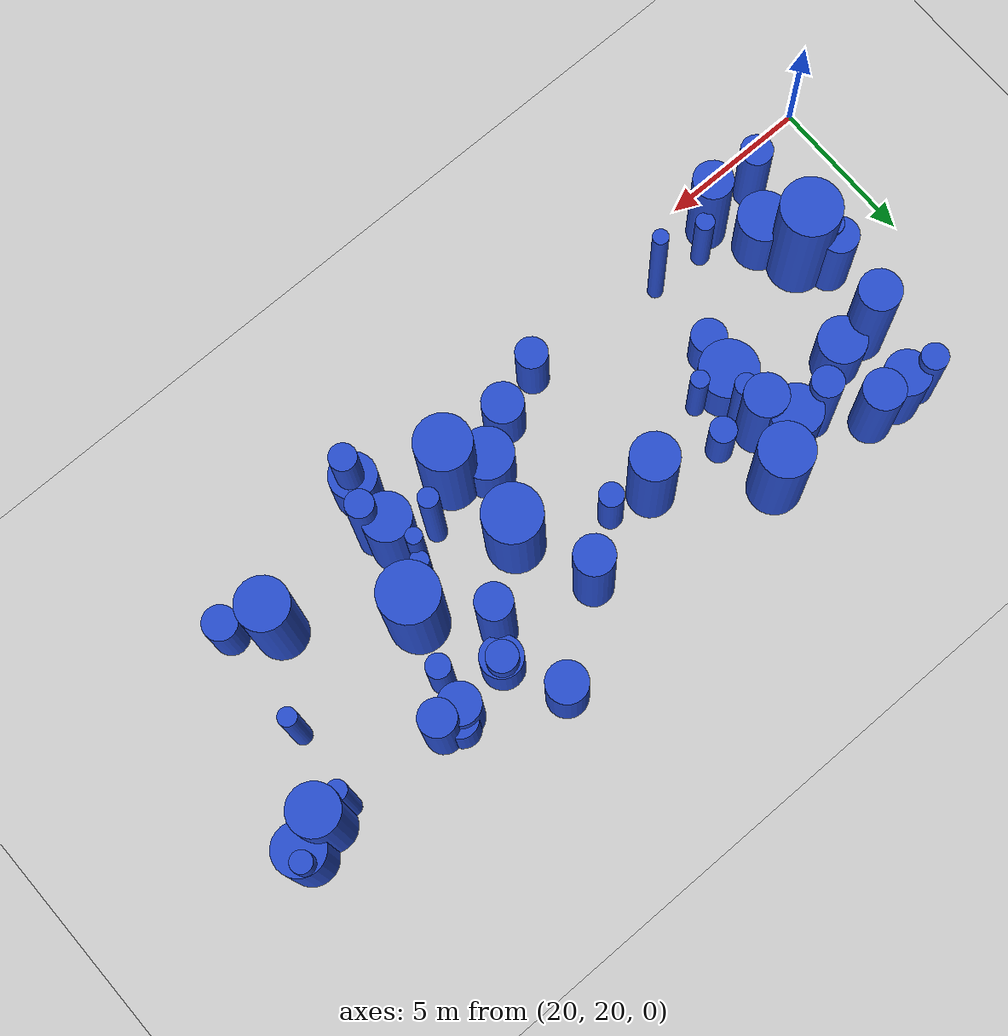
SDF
<sdf version="1.6">
 <world name="default">
  <model name="ground_plane">
   <static>1</static>
   <link name="link">
    <collision name="collision">
     <geometry><plane><normal>0 0 1</normal><size>100 100</size></plane></geometry>
     <surface><friction><ode><mu>100</mu><mu2>50</mu2></ode></friction></surface>
    </collision>
    <visual name="visual">
     <cast_shadows>0</cast_shadows>
     <geometry><plane><normal>0 0 1</normal><size>100 100</size></plane></geometry>
     <material>
      <script><uri>file://media/materials/scripts/gazebo.material</uri><name>Gazebo/Grey</name></script>
     </material>
    </visual>
   </link>
  </model>
  <model name="1">
   <static>0</static>
   <link name="link">
    <inertial>
     <mass>2</mass>
     <inertia><ixx>1.29937</ixx><ixy>0</ixy><ixz>0</ixz><iyy>1.29937</iyy><iyz>0</iyz><izz>0.270526</izz></inertia>
    </inertial>
    <collision name="collision">
     <geometry><cylinder><length>2.64284</length><radius>0.520121</radius></cylinder></geometry>
     <surface><contact><collide_without_contact>1</collide_without_contact></contact></surface>
    </collision>
    <visual name="visual">
     <geometry><cylinder><length>2.64284</length><radius>0.520121</radius></cylinder></geometry>
     <material>
      <script><uri>file://media/materials/scripts/gazebo.material</uri><name>Gazebo/Blue</name></script>
     </material>
    </visual>
    <gravity>0</gravity>
   </link>
   <pose>32.0876 21.3109 1.32142 0 -0 0</pose>
  </model>
  <model name="22">
   <static>0</static>
   <link name="link">
    <inertial>
     <mass>2</mass>
     <inertia><ixx>3.25357</ixx><ixy>0</ixy><ixz>0</ixz><iyy>3.25357</iyy><iyz>0</iyz><izz>0.409144</izz></inertia>
    </inertial>
    <collision name="collision">
     <geometry><cylinder><length>4.27715</length><radius>0.639643</radius></cylinder></geometry>
     <surface><contact><collide_without_contact>1</collide_without_contact></contact></surface>
    </collision>
    <visual name="visual">
     <geometry><cylinder><length>4.27715</length><radius>0.639643</radius></cylinder></geometry>
     <material>
      <script><uri>file://media/materials/scripts/gazebo.material</uri><name>Gazebo/Blue</name></script>
     </material>
    </visual>
    <gravity>0</gravity>
   </link>
   <pose>24.6833 21.1514 2.13857 0 -0 0</pose>
  </model>
  <model name="24">
   <static>0</static>
   <link name="link">
    <inertial>
     <mass>2</mass>
     <inertia><ixx>1.49406</ixx><ixy>0</ixy><ixz>0</ixz><iyy>1.49406</iyy><iyz>0</iyz><izz>0.447724</izz></inertia>
    </inertial>
    <collision name="collision">
     <geometry><cylinder><length>2.76065</length><radius>0.669122</radius></cylinder></geometry>
     <surface><contact><collide_without_contact>1</collide_without_contact></contact></surface>
    </collision>
    <visual name="visual">
     <geometry><cylinder><length>2.76065</length><radius>0.669122</radius></cylinder></geometry>
     <material>
      <script><uri>file://media/materials/scripts/gazebo.material</uri><name>Gazebo/Blue</name></script>
     </material>
    </visual>
    <gravity>0</gravity>
   </link>
   <pose>37.853 29.6773 1.38032 0 -0 0</pose>
  </model>
  <model name="27">
   <static>0</static>
   <link name="link">
    <inertial>
     <mass>2</mass>
     <inertia>
      <ixx>2.06442</ixx>
      <ixy>0</ixy>
      <ixz>0</ixz>
      <iyy>2.06442</iyy>
      <iyz>0</iyz>
      <izz>0.0914529</izz>
     </inertia>
    </inertial>
    <collision name="collision">
     <geometry><cylinder><length>3.48025</length><radius>0.302412</radius></cylinder></geometry>
     <surface><contact><collide_without_contact>1</collide_without_contact></contact></surface>
    </collision>
    <visual name="visual">
     <geometry><cylinder><length>3.48025</length><radius>0.302412</radius></cylinder></geometry>
     <material>
      <script><uri>file://media/materials/scripts/gazebo.material</uri><name>Gazebo/Blue</name></script>
     </material>
    </visual>
    <gravity>0</gravity>
   </link>
   <pose>38.8581 24.2263 1.74013 0 -0 0</pose>
  </model>
  <model name="29">
   <static>0</static>
   <link name="link">
    <inertial>
     <mass>2</mass>
     <inertia>
      <ixx>0.983996</ixx>
      <ixy>0</ixy>
      <ixz>0</ixz>
      <iyy>0.983996</iyy>
      <iyz>0</iyz>
      <izz>0.470048</izz>
     </inertia>
    </inertial>
    <collision name="collision">
     <geometry><cylinder><length>2.11987</length><radius>0.685601</radius></cylinder></geometry>
     <surface><contact><collide_without_contact>1</collide_without_contact></contact></surface>
    </collision>
    <visual name="visual">
     <geometry><cylinder><length>2.11987</length><radius>0.685601</radius></cylinder></geometry>
     <material>
      <script><uri>file://media/materials/scripts/gazebo.material</uri><name>Gazebo/Blue</name></script>
     </material>
    </visual>
    <gravity>0</gravity>
   </link>
   <pose>38.7542 27.7533 1.05993 0 -0 0</pose>
  </model>
  <model name="34">
   <static>0</static>
   <link name="link">
    <inertial>
     <mass>2</mass>
     <inertia><ixx>0.87381</ixx><ixy>0</ixy><ixz>0</ixz><iyy>0.87381</iyy><iyz>0</iyz><izz>0.104626</izz></inertia>
    </inertial>
    <collision name="collision">
     <geometry><cylinder><length>2.22013</length><radius>0.323459</radius></cylinder></geometry>
     <surface><contact><collide_without_contact>1</collide_without_contact></contact></surface>
    </collision>
    <visual name="visual">
     <geometry><cylinder><length>2.22013</length><radius>0.323459</radius></cylinder></geometry>
     <material>
      <script><uri>file://media/materials/scripts/gazebo.material</uri><name>Gazebo/Blue</name></script>
     </material>
    </visual>
    <gravity>0</gravity>
   </link>
   <pose>28.0725 29.1738 1.11007 0 -0 0</pose>
  </model>
  <model name="38">
   <static>0</static>
   <link name="link">
    <inertial>
     <mass>2</mass>
     <inertia><ixx>1.50603</ixx><ixy>0</ixy><ixz>0</ixz><iyy>1.50603</iyy><iyz>0</iyz><izz>0.44841</izz></inertia>
    </inertial>
    <collision name="collision">
     <geometry><cylinder><length>2.77325</length><radius>0.669635</radius></cylinder></geometry>
     <surface><contact><collide_without_contact>1</collide_without_contact></contact></surface>
    </collision>
    <visual name="visual">
     <geometry><cylinder><length>2.77325</length><radius>0.669635</radius></cylinder></geometry>
     <material>
      <script><uri>file://media/materials/scripts/gazebo.material</uri><name>Gazebo/Blue</name></script>
     </material>
    </visual>
    <gravity>0</gravity>
   </link>
   <pose>40.6277 28.1109 1.38663 0 -0 0</pose>
  </model>
  <model name="59">
   <static>0</static>
   <link name="link">
    <inertial>
     <mass>2</mass>
     <inertia><ixx>1.53536</ixx><ixy>0</ixy><ixz>0</ixz><iyy>1.53536</iyy><iyz>0</iyz><izz>0.253607</izz></inertia>
    </inertial>
    <collision name="collision">
     <geometry><cylinder><length>2.90712</length><radius>0.503594</radius></cylinder></geometry>
     <surface><contact><collide_without_contact>1</collide_without_contact></contact></surface>
    </collision>
    <visual name="visual">
     <geometry><cylinder><length>2.90712</length><radius>0.503594</radius></cylinder></geometry>
     <material>
      <script><uri>file://media/materials/scripts/gazebo.material</uri><name>Gazebo/Blue</name></script>
     </material>
    </visual>
    <gravity>0</gravity>
   </link>
   <pose>38.8057 27.8795 1.45356 0 -0 0</pose>
  </model>
  <model name="74">
   <static>0</static>
   <link name="link">
    <inertial>
     <mass>2</mass>
     <inertia><ixx>4.13948</ixx><ixy>0</ixy><ixz>0</ixz><iyy>4.13948</iyy><iyz>0</iyz><izz>0.198706</izz></inertia>
    </inertial>
    <collision name="collision">
     <geometry><cylinder><length>4.92349</length><radius>0.445764</radius></cylinder></geometry>
     <surface><contact><collide_without_contact>1</collide_without_contact></contact></surface>
    </collision>
    <visual name="visual">
     <geometry><cylinder><length>4.92349</length><radius>0.445764</radius></cylinder></geometry>
     <material>
      <script><uri>file://media/materials/scripts/gazebo.material</uri><name>Gazebo/Blue</name></script>
     </material>
    </visual>
    <gravity>0</gravity>
   </link>
   <pose>39.2279 22.1338 2.46174 0 -0 0</pose>
  </model>
  <model name="79">
   <static>0</static>
   <link name="link">
    <inertial>
     <mass>2</mass>
     <inertia><ixx>1.8778</ixx><ixy>0</ixy><ixz>0</ixz><iyy>1.8778</iyy><iyz>0</iyz><izz>0.557212</izz></inertia>
    </inertial>
    <collision name="collision">
     <geometry><cylinder><length>3.09761</length><radius>0.746467</radius></cylinder></geometry>
     <surface><contact><collide_without_contact>1</collide_without_contact></contact></surface>
    </collision>
    <visual name="visual">
     <geometry><cylinder><length>3.09761</length><radius>0.746467</radius></cylinder></geometry>
     <material>
      <script><uri>file://media/materials/scripts/gazebo.material</uri><name>Gazebo/Blue</name></script>
     </material>
    </visual>
    <gravity>0</gravity>
   </link>
   <pose>24 29.3017 1.54881 0 -0 0</pose>
  </model>
  <model name="81">
   <static>0</static>
   <link name="link">
    <inertial>
     <mass>2</mass>
     <inertia><ixx>2.14247</ixx><ixy>0</ixy><ixz>0</ixz><iyy>2.14247</iyy><iyz>0</iyz><izz>0.374912</izz></inertia>
    </inertial>
    <collision name="collision">
     <geometry><cylinder><length>3.42492</length><radius>0.6123</radius></cylinder></geometry>
     <surface><contact><collide_without_contact>1</collide_without_contact></contact></surface>
    </collision>
    <visual name="visual">
     <geometry><cylinder><length>3.42492</length><radius>0.6123</radius></cylinder></geometry>
     <material>
      <script><uri>file://media/materials/scripts/gazebo.material</uri><name>Gazebo/Blue</name></script>
     </material>
    </visual>
    <gravity>0</gravity>
   </link>
   <pose>22.6757 24.7792 1.71246 0 -0 0</pose>
  </model>
  <model name="83">
   <static>0</static>
   <link name="link">
    <inertial>
     <mass>2</mass>
     <inertia><ixx>2.13267</ixx><ixy>0</ixy><ixz>0</ixz><iyy>2.13267</iyy><iyz>0</iyz><izz>0.266317</izz></inertia>
    </inertial>
    <collision name="collision">
     <geometry><cylinder><length>3.46367</length><radius>0.516059</radius></cylinder></geometry>
     <surface><contact><collide_without_contact>1</collide_without_contact></contact></surface>
    </collision>
    <visual name="visual">
     <geometry><cylinder><length>3.46367</length><radius>0.516059</radius></cylinder></geometry>
     <material>
      <script><uri>file://media/materials/scripts/gazebo.material</uri><name>Gazebo/Blue</name></script>
     </material>
    </visual>
    <gravity>0</gravity>
   </link>
   <pose>22.7544 21.0733 1.73184 0 -0 0</pose>
  </model>
  <model name="85">
   <static>0</static>
   <link name="link">
    <inertial>
     <mass>2</mass>
     <inertia><ixx>2.46445</ixx><ixy>0</ixy><ixz>0</ixz><iyy>2.46445</iyy><iyz>0</iyz><izz>0.454652</izz></inertia>
    </inertial>
    <collision name="collision">
     <geometry><cylinder><length>3.66371</length><radius>0.674279</radius></cylinder></geometry>
     <surface><contact><collide_without_contact>1</collide_without_contact></contact></surface>
    </collision>
    <visual name="visual">
     <geometry><cylinder><length>3.66371</length><radius>0.674279</radius></cylinder></geometry>
     <material>
      <script><uri>file://media/materials/scripts/gazebo.material</uri><name>Gazebo/Blue</name></script>
     </material>
    </visual>
    <gravity>0</gravity>
   </link>
   <pose>25.0625 29.2994 1.83185 0 -0 0</pose>
  </model>
  <model name="93">
   <static>0</static>
   <link name="link">
    <inertial>
     <mass>2</mass>
     <inertia><ixx>2.18353</ixx><ixy>0</ixy><ixz>0</ixz><iyy>2.18353</iyy><iyz>0</iyz><izz>0.134024</izz></inertia>
    </inertial>
    <collision name="collision">
     <geometry><cylinder><length>3.56358</length><radius>0.366093</radius></cylinder></geometry>
     <surface><contact><collide_without_contact>1</collide_without_contact></contact></surface>
    </collision>
    <visual name="visual">
     <geometry><cylinder><length>3.56358</length><radius>0.366093</radius></cylinder></geometry>
     <material>
      <script><uri>file://media/materials/scripts/gazebo.material</uri><name>Gazebo/Blue</name></script>
     </material>
    </visual>
    <gravity>0</gravity>
   </link>
   <pose>28.0487 26.4916 1.78179 0 -0 0</pose>
  </model>
  <model name="107">
   <static>0</static>
   <link name="link">
    <inertial>
     <mass>2</mass>
     <inertia><ixx>3.99071</ixx><ixy>0</ixy><ixz>0</ixz><iyy>3.99071</iyy><iyz>0</iyz><izz>0.335329</izz></inertia>
    </inertial>
    <collision name="collision">
     <geometry><cylinder><length>4.78939</length><radius>0.579076</radius></cylinder></geometry>
     <surface><contact><collide_without_contact>1</collide_without_contact></contact></surface>
    </collision>
    <visual name="visual">
     <geometry><cylinder><length>4.78939</length><radius>0.579076</radius></cylinder></geometry>
     <material>
      <script><uri>file://media/materials/scripts/gazebo.material</uri><name>Gazebo/Blue</name></script>
     </material>
    </visual>
    <gravity>0</gravity>
   </link>
   <pose>38.1291 26.8125 2.3947 0 -0 0</pose>
  </model>
  <model name="143">
   <static>0</static>
   <link name="link">
    <inertial>
     <mass>2</mass>
     <inertia>
      <ixx>3.28457</ixx>
      <ixy>0</ixy>
      <ixz>0</ixz>
      <iyy>3.28457</iyy>
      <iyz>0</iyz>
      <izz>0.0998408</izz>
     </inertia>
    </inertial>
    <collision name="collision">
     <geometry><cylinder><length>4.40544</length><radius>0.315976</radius></cylinder></geometry>
     <surface><contact><collide_without_contact>1</collide_without_contact></contact></surface>
    </collision>
    <visual name="visual">
     <geometry><cylinder><length>4.40544</length><radius>0.315976</radius></cylinder></geometry>
     <material>
      <script><uri>file://media/materials/scripts/gazebo.material</uri><name>Gazebo/Blue</name></script>
     </material>
    </visual>
    <gravity>0</gravity>
   </link>
   <pose>44.8876 27.9828 2.20272 0 -0 0</pose>
  </model>
  <model name="185">
   <static>0</static>
   <link name="link">
    <inertial>
     <mass>2</mass>
     <inertia><ixx>3.2904</ixx><ixy>0</ixy><ixz>0</ixz><iyy>3.2904</iyy><iyz>0</iyz><izz>0.257624</izz></inertia>
    </inertial>
    <collision name="collision">
     <geometry><cylinder><length>4.3554</length><radius>0.507566</radius></cylinder></geometry>
     <surface><contact><collide_without_contact>1</collide_without_contact></contact></surface>
    </collision>
    <visual name="visual">
     <geometry><cylinder><length>4.3554</length><radius>0.507566</radius></cylinder></geometry>
     <material>
      <script><uri>file://media/materials/scripts/gazebo.material</uri><name>Gazebo/Blue</name></script>
     </material>
    </visual>
    <gravity>0</gravity>
   </link>
   <pose>26.3808 28.1299 2.1777 0 -0 0</pose>
  </model>
  <model name="189">
   <static>0</static>
   <link name="link">
    <inertial>
     <mass>2</mass>
     <inertia><ixx>3.66883</ixx><ixy>0</ixy><ixz>0</ixz><iyy>3.66883</iyy><iyz>0</iyz><izz>0.588744</izz></inertia>
    </inertial>
    <collision name="collision">
     <geometry><cylinder><length>4.49964</length><radius>0.767297</radius></cylinder></geometry>
     <surface><contact><collide_without_contact>1</collide_without_contact></contact></surface>
    </collision>
    <visual name="visual">
     <geometry><cylinder><length>4.49964</length><radius>0.767297</radius></cylinder></geometry>
     <material>
      <script><uri>file://media/materials/scripts/gazebo.material</uri><name>Gazebo/Blue</name></script>
     </material>
    </visual>
    <gravity>0</gravity>
   </link>
   <pose>31.7734 26.5476 2.24982 0 -0 0</pose>
  </model>
  <model name="192">
   <static>0</static>
   <link name="link">
    <inertial>
     <mass>2</mass>
     <inertia>
      <ixx>0.952831</ixx>
      <ixy>0</ixy>
      <ixz>0</ixz>
      <iyy>0.952831</iyy>
      <iyz>0</iyz>
      <izz>0.320397</izz>
     </inertia>
    </inertial>
    <collision name="collision">
     <geometry><cylinder><length>2.18078</length><radius>0.566036</radius></cylinder></geometry>
     <surface><contact><collide_without_contact>1</collide_without_contact></contact></surface>
    </collision>
    <visual name="visual">
     <geometry><cylinder><length>2.18078</length><radius>0.566036</radius></cylinder></geometry>
     <material>
      <script><uri>file://media/materials/scripts/gazebo.material</uri><name>Gazebo/Blue</name></script>
     </material>
    </visual>
    <gravity>0</gravity>
   </link>
   <pose>40.8881 28.404 1.09039 0 -0 0</pose>
  </model>
  <model name="196">
   <static>0</static>
   <link name="link">
    <inertial>
     <mass>2</mass>
     <inertia><ixx>4.1347</ixx><ixy>0</ixy><ixz>0</ixz><iyy>4.1347</iyy><iyz>0</iyz><izz>0.806814</izz></inertia>
    </inertial>
    <collision name="collision">
     <geometry><cylinder><length>4.73157</length><radius>0.898228</radius></cylinder></geometry>
     <surface><contact><collide_without_contact>1</collide_without_contact></contact></surface>
    </collision>
    <visual name="visual">
     <geometry><cylinder><length>4.73157</length><radius>0.898228</radius></cylinder></geometry>
     <material>
      <script><uri>file://media/materials/scripts/gazebo.material</uri><name>Gazebo/Blue</name></script>
     </material>
    </visual>
    <gravity>0</gravity>
   </link>
   <pose>36.2119 22.2404 2.36579 0 -0 0</pose>
  </model>
  <model name="214">
   <static>0</static>
   <link name="link">
    <inertial>
     <mass>2</mass>
     <inertia><ixx>4.34058</ixx><ixy>0</ixy><ixz>0</ixz><iyy>4.34058</iyy><iyz>0</iyz><izz>0.920696</izz></inertia>
    </inertial>
    <collision name="collision">
     <geometry><cylinder><length>4.82508</length><radius>0.959529</radius></cylinder></geometry>
     <surface><contact><collide_without_contact>1</collide_without_contact></contact></surface>
    </collision>
    <visual name="visual">
     <geometry><cylinder><length>4.82508</length><radius>0.959529</radius></cylinder></geometry>
     <material>
      <script><uri>file://media/materials/scripts/gazebo.material</uri><name>Gazebo/Blue</name></script>
     </material>
    </visual>
    <gravity>0</gravity>
   </link>
   <pose>39.8046 25.0265 2.41254 0 -0 0</pose>
  </model>
  <model name="226">
   <static>0</static>
   <link name="link">
    <inertial>
     <mass>2</mass>
     <inertia>
      <ixx>1.53462</ixx>
      <ixy>0</ixy>
      <ixz>0</ixz>
      <iyy>1.53462</iyy>
      <iyz>0</iyz>
      <izz>0.0871782</izz>
     </inertia>
    </inertial>
    <collision name="collision">
     <geometry><cylinder><length>2.99101</length><radius>0.29526</radius></cylinder></geometry>
     <surface><contact><collide_without_contact>1</collide_without_contact></contact></surface>
    </collision>
    <visual name="visual">
     <geometry><cylinder><length>2.99101</length><radius>0.29526</radius></cylinder></geometry>
     <material>
      <script><uri>file://media/materials/scripts/gazebo.material</uri><name>Gazebo/Blue</name></script>
     </material>
    </visual>
    <gravity>0</gravity>
   </link>
   <pose>28.8541 25.3477 1.49551 0 -0 0</pose>
  </model>
  <model name="230">
   <static>0</static>
   <link name="link">
    <inertial>
     <mass>2</mass>
     <inertia><ixx>2.15786</ixx><ixy>0</ixy><ixz>0</ixz><iyy>2.15786</iyy><iyz>0</iyz><izz>0.14933</izz></inertia>
    </inertial>
    <collision name="collision">
     <geometry><cylinder><length>3.53542</length><radius>0.386433</radius></cylinder></geometry>
     <surface><contact><collide_without_contact>1</collide_without_contact></contact></surface>
    </collision>
    <visual name="visual">
     <geometry><cylinder><length>3.53542</length><radius>0.386433</radius></cylinder></geometry>
     <material>
      <script><uri>file://media/materials/scripts/gazebo.material</uri><name>Gazebo/Blue</name></script>
     </material>
    </visual>
    <gravity>0</gravity>
   </link>
   <pose>22.6501 24.3655 1.76771 0 -0 0</pose>
  </model>
  <model name="245">
   <static>0</static>
   <link name="link">
    <inertial>
     <mass>2</mass>
     <inertia><ixx>2.39322</ixx><ixy>0</ixy><ixz>0</ixz><iyy>2.39322</iyy><iyz>0</iyz><izz>0.353974</izz></inertia>
    </inertial>
    <collision name="collision">
     <geometry><cylinder><length>3.64656</length><radius>0.594957</radius></cylinder></geometry>
     <surface><contact><collide_without_contact>1</collide_without_contact></contact></surface>
    </collision>
    <visual name="visual">
     <geometry><cylinder><length>3.64656</length><radius>0.594957</radius></cylinder></geometry>
     <material>
      <script><uri>file://media/materials/scripts/gazebo.material</uri><name>Gazebo/Blue</name></script>
     </material>
    </visual>
    <gravity>0</gravity>
   </link>
   <pose>41.4235 28.1396 1.82328 0 -0 0</pose>
  </model>
  <model name="249">
   <static>0</static>
   <link name="link">
    <inertial>
     <mass>2</mass>
     <inertia><ixx>2.36358</ixx><ixy>0</ixy><ixz>0</ixz><iyy>2.36358</iyy><iyz>0</iyz><izz>0.677552</izz></inertia>
    </inertial>
    <collision name="collision">
     <geometry><cylinder><length>3.48552</length><radius>0.823135</radius></cylinder></geometry>
     <surface><contact><collide_without_contact>1</collide_without_contact></contact></surface>
    </collision>
    <visual name="visual">
     <geometry><cylinder><length>3.48552</length><radius>0.823135</radius></cylinder></geometry>
     <material>
      <script><uri>file://media/materials/scripts/gazebo.material</uri><name>Gazebo/Blue</name></script>
     </material>
    </visual>
    <gravity>0</gravity>
   </link>
   <pose>46.7576 28.4282 1.74276 0 -0 0</pose>
  </model>
  <model name="269">
   <static>0</static>
   <link name="link">
    <inertial>
     <mass>2</mass>
     <inertia><ixx>3.28078</ixx><ixy>0</ixy><ixz>0</ixz><iyy>3.28078</iyy><iyz>0</iyz><izz>0.106426</izz></inertia>
    </inertial>
    <collision name="collision">
     <geometry><cylinder><length>4.40061</length><radius>0.326229</radius></cylinder></geometry>
     <surface><contact><collide_without_contact>1</collide_without_contact></contact></surface>
    </collision>
    <visual name="visual">
     <geometry><cylinder><length>4.40061</length><radius>0.326229</radius></cylinder></geometry>
     <material>
      <script><uri>file://media/materials/scripts/gazebo.material</uri><name>Gazebo/Blue</name></script>
     </material>
    </visual>
    <gravity>0</gravity>
   </link>
   <pose>37.5575 23.1611 2.20031 0 -0 0</pose>
  </model>
  <model name="281">
   <static>0</static>
   <link name="link">
    <inertial>
     <mass>2</mass>
     <inertia><ixx>4.04759</ixx><ixy>0</ixy><ixz>0</ixz><iyy>4.04759</iyy><iyz>0</iyz><izz>0.453666</izz></inertia>
    </inertial>
    <collision name="collision">
     <geometry><cylinder><length>4.78796</length><radius>0.673547</radius></cylinder></geometry>
     <surface><contact><collide_without_contact>1</collide_without_contact></contact></surface>
    </collision>
    <visual name="visual">
     <geometry><cylinder><length>4.78796</length><radius>0.673547</radius></cylinder></geometry>
     <material>
      <script><uri>file://media/materials/scripts/gazebo.material</uri><name>Gazebo/Blue</name></script>
     </material>
    </visual>
    <gravity>0</gravity>
   </link>
   <pose>23.4184 27.1185 2.39398 0 -0 0</pose>
  </model>
  <model name="287">
   <static>0</static>
   <link name="link">
    <inertial>
     <mass>2</mass>
     <inertia><ixx>1.29198</ixx><ixy>0</ixy><ixz>0</ixz><iyy>1.29198</iyy><iyz>0</iyz><izz>0.576317</izz></inertia>
    </inertial>
    <collision name="collision">
     <geometry><cylinder><length>2.45416</length><radius>0.759155</radius></cylinder></geometry>
     <surface><contact><collide_without_contact>1</collide_without_contact></contact></surface>
    </collision>
    <visual name="visual">
     <geometry><cylinder><length>2.45416</length><radius>0.759155</radius></cylinder></geometry>
     <material>
      <script><uri>file://media/materials/scripts/gazebo.material</uri><name>Gazebo/Blue</name></script>
     </material>
    </visual>
    <gravity>0</gravity>
   </link>
   <pose>38.6268 20.7002 1.22708 0 -0 0</pose>
  </model>
  <model name="292">
   <static>0</static>
   <link name="link">
    <inertial>
     <mass>2</mass>
     <inertia><ixx>1.30599</ixx><ixy>0</ixy><ixz>0</ixz><iyy>1.30599</iyy><iyz>0</iyz><izz>0.103898</izz></inertia>
    </inertial>
    <collision name="collision">
     <geometry><cylinder><length>2.74303</length><radius>0.322332</radius></cylinder></geometry>
     <surface><contact><collide_without_contact>1</collide_without_contact></contact></surface>
    </collision>
    <visual name="visual">
     <geometry><cylinder><length>2.74303</length><radius>0.322332</radius></cylinder></geometry>
     <material>
      <script><uri>file://media/materials/scripts/gazebo.material</uri><name>Gazebo/Blue</name></script>
     </material>
    </visual>
    <gravity>0</gravity>
   </link>
   <pose>45.9521 27.54 1.37152 0 -0 0</pose>
  </model>
  <model name="297">
   <static>0</static>
   <link name="link">
    <inertial>
     <mass>2</mass>
     <inertia>
      <ixx>2.53705</ixx>
      <ixy>0</ixy>
      <ixz>0</ixz>
      <iyy>2.53705</iyy>
      <iyz>0</iyz>
      <izz>0.0895186</izz>
     </inertia>
    </inertial>
    <collision name="collision">
     <geometry><cylinder><length>3.86701</length><radius>0.299197</radius></cylinder></geometry>
     <surface><contact><collide_without_contact>1</collide_without_contact></contact></surface>
    </collision>
    <visual name="visual">
     <geometry><cylinder><length>3.86701</length><radius>0.299197</radius></cylinder></geometry>
     <material>
      <script><uri>file://media/materials/scripts/gazebo.material</uri><name>Gazebo/Blue</name></script>
     </material>
    </visual>
    <gravity>0</gravity>
   </link>
   <pose>44.6521 25.365 1.9335 0 -0 0</pose>
  </model>
  <model name="304">
   <static>0</static>
   <link name="link">
    <inertial>
     <mass>2</mass>
     <inertia>
      <ixx>3.83924</ixx>
      <ixy>0</ixy>
      <ixz>0</ixz>
      <iyy>3.83924</iyy>
      <iyz>0</iyz>
      <izz>0.0645809</izz>
     </inertia>
    </inertial>
    <collision name="collision">
     <geometry><cylinder><length>4.7793</length><radius>0.254128</radius></cylinder></geometry>
     <surface><contact><collide_without_contact>1</collide_without_contact></contact></surface>
    </collision>
    <visual name="visual">
     <geometry><cylinder><length>4.7793</length><radius>0.254128</radius></cylinder></geometry>
     <material>
      <script><uri>file://media/materials/scripts/gazebo.material</uri><name>Gazebo/Blue</name></script>
     </material>
    </visual>
    <gravity>0</gravity>
   </link>
   <pose>27.2433 21.6225 2.38965 0 -0 0</pose>
  </model>
  <model name="306">
   <static>0</static>
   <link name="link">
    <inertial>
     <mass>2</mass>
     <inertia><ixx>2.92772</ixx><ixy>0</ixy><ixz>0</ixz><iyy>2.92772</iyy><iyz>0</iyz><izz>0.495754</izz></inertia>
    </inertial>
    <collision name="collision">
     <geometry><cylinder><length>4.00987</length><radius>0.704098</radius></cylinder></geometry>
     <surface><contact><collide_without_contact>1</collide_without_contact></contact></surface>
    </collision>
    <visual name="visual">
     <geometry><cylinder><length>4.00987</length><radius>0.704098</radius></cylinder></geometry>
     <material>
      <script><uri>file://media/materials/scripts/gazebo.material</uri><name>Gazebo/Blue</name></script>
     </material>
    </visual>
    <gravity>0</gravity>
   </link>
   <pose>27.9331 27.2007 2.00493 0 -0 0</pose>
  </model>
  <model name="308">
   <static>0</static>
   <link name="link">
    <inertial>
     <mass>2</mass>
     <inertia><ixx>1.25859</ixx><ixy>0</ixy><ixz>0</ixz><iyy>1.25859</iyy><iyz>0</iyz><izz>0.725328</izz></inertia>
    </inertial>
    <collision name="collision">
     <geometry><cylinder><length>2.31852</length><radius>0.851662</radius></cylinder></geometry>
     <surface><contact><collide_without_contact>1</collide_without_contact></contact></surface>
    </collision>
    <visual name="visual">
     <geometry><cylinder><length>2.31852</length><radius>0.851662</radius></cylinder></geometry>
     <material>
      <script><uri>file://media/materials/scripts/gazebo.material</uri><name>Gazebo/Blue</name></script>
     </material>
    </visual>
    <gravity>0</gravity>
   </link>
   <pose>35.105 22.7625 1.15926 0 -0 0</pose>
  </model>
  <model name="311">
   <static>0</static>
   <link name="link">
    <inertial>
     <mass>2</mass>
     <inertia><ixx>3.64164</ixx><ixy>0</ixy><ixz>0</ixz><iyy>3.64164</iyy><iyz>0</iyz><izz>0.189184</izz></inertia>
    </inertial>
    <collision name="collision">
     <geometry><cylinder><length>4.61327</length><radius>0.434953</radius></cylinder></geometry>
     <surface><contact><collide_without_contact>1</collide_without_contact></contact></surface>
    </collision>
    <visual name="visual">
     <geometry><cylinder><length>4.61327</length><radius>0.434953</radius></cylinder></geometry>
     <material>
      <script><uri>file://media/materials/scripts/gazebo.material</uri><name>Gazebo/Blue</name></script>
     </material>
    </visual>
    <gravity>0</gravity>
   </link>
   <pose>38.6861 20.6618 2.30664 0 -0 0</pose>
  </model>
  <model name="341">
   <static>0</static>
   <link name="link">
    <inertial>
     <mass>2</mass>
     <inertia><ixx>3.9869</ixx><ixy>0</ixy><ixz>0</ixz><iyy>3.9869</iyy><iyz>0</iyz><izz>0.69711</izz></inertia>
    </inertial>
    <collision name="collision">
     <geometry><cylinder><length>4.67226</length><radius>0.834931</radius></cylinder></geometry>
     <surface><contact><collide_without_contact>1</collide_without_contact></contact></surface>
    </collision>
    <visual name="visual">
     <geometry><cylinder><length>4.67226</length><radius>0.834931</radius></cylinder></geometry>
     <material>
      <script><uri>file://media/materials/scripts/gazebo.material</uri><name>Gazebo/Blue</name></script>
     </material>
    </visual>
    <gravity>0</gravity>
   </link>
   <pose>43.1622 22.5309 2.33613 0 -0 0</pose>
  </model>
  <model name="346">
   <static>0</static>
   <link name="link">
    <inertial>
     <mass>2</mass>
     <inertia>
      <ixx>3.42717</ixx>
      <ixy>0</ixy>
      <ixz>0</ixz>
      <iyy>3.42717</iyy>
      <iyz>0</iyz>
      <izz>0.0698452</izz>
     </inertia>
    </inertial>
    <collision name="collision">
     <geometry><cylinder><length>4.51148</length><radius>0.264282</radius></cylinder></geometry>
     <surface><contact><collide_without_contact>1</collide_without_contact></contact></surface>
    </collision>
    <visual name="visual">
     <geometry><cylinder><length>4.51148</length><radius>0.264282</radius></cylinder></geometry>
     <material>
      <script><uri>file://media/materials/scripts/gazebo.material</uri><name>Gazebo/Blue</name></script>
     </material>
    </visual>
    <gravity>0</gravity>
   </link>
   <pose>38.6072 23.7853 2.25574 0 -0 0</pose>
  </model>
  <model name="359">
   <static>0</static>
   <link name="link">
    <inertial>
     <mass>2</mass>
     <inertia><ixx>1.16653</ixx><ixy>0</ixy><ixz>0</ixz><iyy>1.16653</iyy><iyz>0</iyz><izz>0.308994</izz></inertia>
    </inertial>
    <collision name="collision">
     <geometry><cylinder><length>2.46418</length><radius>0.555872</radius></cylinder></geometry>
     <surface><contact><collide_without_contact>1</collide_without_contact></contact></surface>
    </collision>
    <visual name="visual">
     <geometry><cylinder><length>2.46418</length><radius>0.555872</radius></cylinder></geometry>
     <material>
      <script><uri>file://media/materials/scripts/gazebo.material</uri><name>Gazebo/Blue</name></script>
     </material>
    </visual>
    <gravity>0</gravity>
   </link>
   <pose>44.4258 21.6249 1.23209 0 -0 0</pose>
  </model>
  <model name="364">
   <static>0</static>
   <link name="link">
    <inertial>
     <mass>2</mass>
     <inertia><ixx>4.57289</ixx><ixy>0</ixy><ixz>0</ixz><iyy>4.57289</iyy><iyz>0</iyz><izz>0.938023</izz></inertia>
    </inertial>
    <collision name="collision">
     <geometry><cylinder><length>4.96218</length><radius>0.968516</radius></cylinder></geometry>
     <surface><contact><collide_without_contact>1</collide_without_contact></contact></surface>
    </collision>
    <visual name="visual">
     <geometry><cylinder><length>4.96218</length><radius>0.968516</radius></cylinder></geometry>
     <material>
      <script><uri>file://media/materials/scripts/gazebo.material</uri><name>Gazebo/Blue</name></script>
     </material>
    </visual>
    <gravity>0</gravity>
   </link>
   <pose>23.2527 23.8889 2.48109 0 -0 0</pose>
  </model>
  <model name="366">
   <static>0</static>
   <link name="link">
    <inertial>
     <mass>2</mass>
     <inertia>
      <ixx>1.60809</ixx>
      <ixy>0</ixy>
      <ixz>0</ixz>
      <iyy>1.60809</iyy>
      <iyz>0</iyz>
      <izz>0.0912538</izz>
     </inertia>
    </inertial>
    <collision name="collision">
     <geometry><cylinder><length>3.06183</length><radius>0.302083</radius></cylinder></geometry>
     <surface><contact><collide_without_contact>1</collide_without_contact></contact></surface>
    </collision>
    <visual name="visual">
     <geometry><cylinder><length>3.06183</length><radius>0.302083</radius></cylinder></geometry>
     <material>
      <script><uri>file://media/materials/scripts/gazebo.material</uri><name>Gazebo/Blue</name></script>
     </material>
    </visual>
    <gravity>0</gravity>
   </link>
   <pose>25.3988 21.688 1.53091 0 -0 0</pose>
  </model>
  <model name="368">
   <static>0</static>
   <link name="link">
    <inertial>
     <mass>2</mass>
     <inertia><ixx>1.40716</ixx><ixy>0</ixy><ixz>0</ixz><iyy>1.40716</iyy><iyz>0</iyz><izz>0.156494</izz></inertia>
    </inertial>
    <collision name="collision">
     <geometry><cylinder><length>2.82374</length><radius>0.395593</radius></cylinder></geometry>
     <surface><contact><collide_without_contact>1</collide_without_contact></contact></surface>
    </collision>
    <visual name="visual">
     <geometry><cylinder><length>2.82374</length><radius>0.395593</radius></cylinder></geometry>
     <material>
      <script><uri>file://media/materials/scripts/gazebo.material</uri><name>Gazebo/Blue</name></script>
     </material>
    </visual>
    <gravity>0</gravity>
   </link>
   <pose>33.1906 26.2865 1.41187 0 -0 0</pose>
  </model>
  <model name="378">
   <static>0</static>
   <link name="link">
    <inertial>
     <mass>2</mass>
     <inertia><ixx>3.75294</ixx><ixy>0</ixy><ixz>0</ixz><iyy>3.75294</iyy><iyz>0</iyz><izz>0.774034</izz></inertia>
    </inertial>
    <collision name="collision">
     <geometry><cylinder><length>4.49395</length><radius>0.879792</radius></cylinder></geometry>
     <surface><contact><collide_without_contact>1</collide_without_contact></contact></surface>
    </collision>
    <visual name="visual">
     <geometry><cylinder><length>4.49395</length><radius>0.879792</radius></cylinder></geometry>
     <material>
      <script><uri>file://media/materials/scripts/gazebo.material</uri><name>Gazebo/Blue</name></script>
     </material>
    </visual>
    <gravity>0</gravity>
   </link>
   <pose>28.7247 28.9027 2.24697 0 -0 0</pose>
  </model>
  <model name="381">
   <static>0</static>
   <link name="link">
    <inertial>
     <mass>2</mass>
     <inertia><ixx>0.83392</ixx><ixy>0</ixy><ixz>0</ixz><iyy>0.83392</iyy><iyz>0</iyz><izz>0.331734</izz></inertia>
    </inertial>
    <collision name="collision">
     <geometry><cylinder><length>2.00208</length><radius>0.575963</radius></cylinder></geometry>
     <surface><contact><collide_without_contact>1</collide_without_contact></contact></surface>
    </collision>
    <visual name="visual">
     <geometry><cylinder><length>2.00208</length><radius>0.575963</radius></cylinder></geometry>
     <material>
      <script><uri>file://media/materials/scripts/gazebo.material</uri><name>Gazebo/Blue</name></script>
     </material>
    </visual>
    <gravity>0</gravity>
   </link>
   <pose>27.472 24.2909 1.00104 0 -0 0</pose>
  </model>
  <model name="382">
   <static>0</static>
   <link name="link">
    <inertial>
     <mass>2</mass>
     <inertia><ixx>3.19026</ixx><ixy>0</ixy><ixz>0</ixz><iyy>3.19026</iyy><iyz>0</iyz><izz>0.120068</izz></inertia>
    </inertial>
    <collision name="collision">
     <geometry><cylinder><length>4.33375</length><radius>0.346508</radius></cylinder></geometry>
     <surface><contact><collide_without_contact>1</collide_without_contact></contact></surface>
    </collision>
    <visual name="visual">
     <geometry><cylinder><length>4.33375</length><radius>0.346508</radius></cylinder></geometry>
     <material>
      <script><uri>file://media/materials/scripts/gazebo.material</uri><name>Gazebo/Blue</name></script>
     </material>
    </visual>
    <gravity>0</gravity>
   </link>
   <pose>46.8887 28.8667 2.16687 0 -0 0</pose>
  </model>
  <model name="383">
   <static>0</static>
   <link name="link">
    <inertial>
     <mass>2</mass>
     <inertia><ixx>1.4937</ixx><ixy>0</ixy><ixz>0</ixz><iyy>1.4937</iyy><iyz>0</iyz><izz>0.714581</izz></inertia>
    </inertial>
    <collision name="collision">
     <geometry><cylinder><length>2.61122</length><radius>0.845329</radius></cylinder></geometry>
     <surface><contact><collide_without_contact>1</collide_without_contact></contact></surface>
    </collision>
    <visual name="visual">
     <geometry><cylinder><length>2.61122</length><radius>0.845329</radius></cylinder></geometry>
     <material>
      <script><uri>file://media/materials/scripts/gazebo.material</uri><name>Gazebo/Blue</name></script>
     </material>
    </visual>
    <gravity>0</gravity>
   </link>
   <pose>23.7545 22.624 1.30561 0 -0 0</pose>
  </model>
  <model name="387">
   <static>0</static>
   <link name="link">
    <inertial>
     <mass>2</mass>
     <inertia><ixx>1.15955</ixx><ixy>0</ixy><ixz>0</ixz><iyy>1.15955</iyy><iyz>0</iyz><izz>0.452819</izz></inertia>
    </inertial>
    <collision name="collision">
     <geometry><cylinder><length>2.36619</length><radius>0.672918</radius></cylinder></geometry>
     <surface><contact><collide_without_contact>1</collide_without_contact></contact></surface>
    </collision>
    <visual name="visual">
     <geometry><cylinder><length>2.36619</length><radius>0.672918</radius></cylinder></geometry>
     <material>
      <script><uri>file://media/materials/scripts/gazebo.material</uri><name>Gazebo/Blue</name></script>
     </material>
    </visual>
    <gravity>0</gravity>
   </link>
   <pose>33.7284 21.8766 1.1831 0 -0 0</pose>
  </model>
  <model name="400">
   <static>0</static>
   <link name="link">
    <inertial>
     <mass>2</mass>
     <inertia><ixx>2.23096</ixx><ixy>0</ixy><ixz>0</ixz><iyy>2.23096</iyy><iyz>0</iyz><izz>0.187975</izz></inertia>
    </inertial>
    <collision name="collision">
     <geometry><cylinder><length>3.58076</length><radius>0.433561</radius></cylinder></geometry>
     <surface><contact><collide_without_contact>1</collide_without_contact></contact></surface>
    </collision>
    <visual name="visual">
     <geometry><cylinder><length>3.58076</length><radius>0.433561</radius></cylinder></geometry>
     <material>
      <script><uri>file://media/materials/scripts/gazebo.material</uri><name>Gazebo/Blue</name></script>
     </material>
    </visual>
    <gravity>0</gravity>
   </link>
   <pose>23.1962 29.521 1.79038 0 -0 0</pose>
  </model>
  <model name="404">
   <static>0</static>
   <link name="link">
    <inertial>
     <mass>2</mass>
     <inertia><ixx>1.18438</ixx><ixy>0</ixy><ixz>0</ixz><iyy>1.18438</iyy><iyz>0</iyz><izz>0.91879</izz></inertia>
    </inertial>
    <collision name="collision">
     <geometry><cylinder><length>2.08565</length><radius>0.958535</radius></cylinder></geometry>
     <surface><contact><collide_without_contact>1</collide_without_contact></contact></surface>
    </collision>
    <visual name="visual">
     <geometry><cylinder><length>2.08565</length><radius>0.958535</radius></cylinder></geometry>
     <material>
      <script><uri>file://media/materials/scripts/gazebo.material</uri><name>Gazebo/Blue</name></script>
     </material>
    </visual>
    <gravity>0</gravity>
   </link>
   <pose>27.7304 25.4964 1.04282 0 -0 0</pose>
  </model>
  <model name="419">
   <static>0</static>
   <link name="link">
    <inertial>
     <mass>2</mass>
     <inertia><ixx>4.32696</ixx><ixy>0</ixy><ixz>0</ixz><iyy>4.32696</iyy><iyz>0</iyz><izz>0.647797</izz></inertia>
    </inertial>
    <collision name="collision">
     <geometry><cylinder><length>4.90085</length><radius>0.804858</radius></cylinder></geometry>
     <surface><contact><collide_without_contact>1</collide_without_contact></contact></surface>
    </collision>
    <visual name="visual">
     <geometry><cylinder><length>4.90085</length><radius>0.804858</radius></cylinder></geometry>
     <material>
      <script><uri>file://media/materials/scripts/gazebo.material</uri><name>Gazebo/Blue</name></script>
     </material>
    </visual>
    <gravity>0</gravity>
   </link>
   <pose>45.7177 28.0551 2.45043 0 -0 0</pose>
  </model>
  <model name="434">
   <static>0</static>
   <link name="link">
    <inertial>
     <mass>2</mass>
     <inertia><ixx>1.31295</ixx><ixy>0</ixy><ixz>0</ixz><iyy>1.31295</iyy><iyz>0</iyz><izz>0.611923</izz></inertia>
    </inertial>
    <collision name="collision">
     <geometry><cylinder><length>2.45803</length><radius>0.782255</radius></cylinder></geometry>
     <surface><contact><collide_without_contact>1</collide_without_contact></contact></surface>
    </collision>
    <visual name="visual">
     <geometry><cylinder><length>2.45803</length><radius>0.782255</radius></cylinder></geometry>
     <material>
      <script><uri>file://media/materials/scripts/gazebo.material</uri><name>Gazebo/Blue</name></script>
     </material>
    </visual>
    <gravity>0</gravity>
   </link>
   <pose>24.5858 27.1471 1.22902 0 -0 0</pose>
  </model>
  <model name="446">
   <static>0</static>
   <link name="link">
    <inertial>
     <mass>2</mass>
     <inertia><ixx>1.47857</ixx><ixy>0</ixy><ixz>0</ixz><iyy>1.47857</iyy><iyz>0</iyz><izz>0.155639</izz></inertia>
    </inertial>
    <collision name="collision">
     <geometry><cylinder><length>2.89905</length><radius>0.394511</radius></cylinder></geometry>
     <surface><contact><collide_without_contact>1</collide_without_contact></contact></surface>
    </collision>
    <visual name="visual">
     <geometry><cylinder><length>2.89905</length><radius>0.394511</radius></cylinder></geometry>
     <material>
      <script><uri>file://media/materials/scripts/gazebo.material</uri><name>Gazebo/Blue</name></script>
     </material>
    </visual>
    <gravity>0</gravity>
   </link>
   <pose>40.4034 26.8816 1.44953 0 -0 0</pose>
  </model>
  <model name="449">
   <static>0</static>
   <link name="link">
    <inertial>
     <mass>2</mass>
     <inertia><ixx>3.21633</ixx><ixy>0</ixy><ixz>0</ixz><iyy>3.21633</iyy><iyz>0</iyz><izz>0.888935</izz></inertia>
    </inertial>
    <collision name="collision">
     <geometry><cylinder><length>4.07814</length><radius>0.942833</radius></cylinder></geometry>
     <surface><contact><collide_without_contact>1</collide_without_contact></contact></surface>
    </collision>
    <visual name="visual">
     <geometry><cylinder><length>4.07814</length><radius>0.942833</radius></cylinder></geometry>
     <material>
      <script><uri>file://media/materials/scripts/gazebo.material</uri><name>Gazebo/Blue</name></script>
     </material>
    </visual>
    <gravity>0</gravity>
   </link>
   <pose>35.9627 25.0403 2.03907 0 -0 0</pose>
  </model>
  <model name="459">
   <static>0</static>
   <link name="link">
    <inertial>
     <mass>2</mass>
     <inertia><ixx>3.53176</ixx><ixy>0</ixy><ixz>0</ixz><iyy>3.53176</iyy><iyz>0</iyz><izz>0.414619</izz></inertia>
    </inertial>
    <collision name="collision">
     <geometry><cylinder><length>4.46618</length><radius>0.643909</radius></cylinder></geometry>
     <surface><contact><collide_without_contact>1</collide_without_contact></contact></surface>
    </collision>
    <visual name="visual">
     <geometry><cylinder><length>4.46618</length><radius>0.643909</radius></cylinder></geometry>
     <material>
      <script><uri>file://media/materials/scripts/gazebo.material</uri><name>Gazebo/Blue</name></script>
     </material>
    </visual>
    <gravity>0</gravity>
   </link>
   <pose>35.0231 27.612 2.23309 0 -0 0</pose>
  </model>
  <model name="469">
   <static>0</static>
   <link name="link">
    <inertial>
     <mass>2</mass>
     <inertia>
      <ixx>0.999954</ixx>
      <ixy>0</ixy>
      <ixz>0</ixz>
      <iyy>0.999954</iyy>
      <iyz>0</iyz>
      <izz>0.186693</izz>
     </inertia>
    </inertial>
    <collision name="collision">
     <geometry><cylinder><length>2.3323</length><radius>0.43208</radius></cylinder></geometry>
     <surface><contact><collide_without_contact>1</collide_without_contact></contact></surface>
    </collision>
    <visual name="visual">
     <geometry><cylinder><length>2.3323</length><radius>0.43208</radius></cylinder></geometry>
     <material>
      <script><uri>file://media/materials/scripts/gazebo.material</uri><name>Gazebo/Blue</name></script>
     </material>
    </visual>
    <gravity>0</gravity>
   </link>
   <pose>29.214 26.8756 1.16615 0 -0 0</pose>
  </model>
  <model name="491">
   <static>0</static>
   <link name="link">
    <inertial>
     <mass>2</mass>
     <inertia><ixx>3.04847</ixx><ixy>0</ixy><ixz>0</ixz><iyy>3.04847</iyy><iyz>0</iyz><izz>0.605203</izz></inertia>
    </inertial>
    <collision name="collision">
     <geometry><cylinder><length>4.05897</length><radius>0.777948</radius></cylinder></geometry>
     <surface><contact><collide_without_contact>1</collide_without_contact></contact></surface>
    </collision>
    <visual name="visual">
     <geometry><cylinder><length>4.05897</length><radius>0.777948</radius></cylinder></geometry>
     <material>
      <script><uri>file://media/materials/scripts/gazebo.material</uri><name>Gazebo/Blue</name></script>
     </material>
    </visual>
    <gravity>0</gravity>
   </link>
   <pose>38.808 22.7249 2.02948 0 -0 0</pose>
  </model>
  <model name="495">
   <static>0</static>
   <link name="link">
    <inertial>
     <mass>2</mass>
     <inertia><ixx>2.85282</ixx><ixy>0</ixy><ixz>0</ixz><iyy>2.85282</iyy><iyz>0</iyz><izz>0.70105</izz></inertia>
    </inertial>
    <collision name="collision">
     <geometry><cylinder><length>3.87476</length><radius>0.837287</radius></cylinder></geometry>
     <surface><contact><collide_without_contact>1</collide_without_contact></contact></surface>
    </collision>
    <visual name="visual">
     <geometry><cylinder><length>3.87476</length><radius>0.837287</radius></cylinder></geometry>
     <material>
      <script><uri>file://media/materials/scripts/gazebo.material</uri><name>Gazebo/Blue</name></script>
     </material>
    </visual>
    <gravity>0</gravity>
   </link>
   <pose>27.5306 28.0958 1.93738 0 -0 0</pose>
  </model>
 </world>
</sdf>
